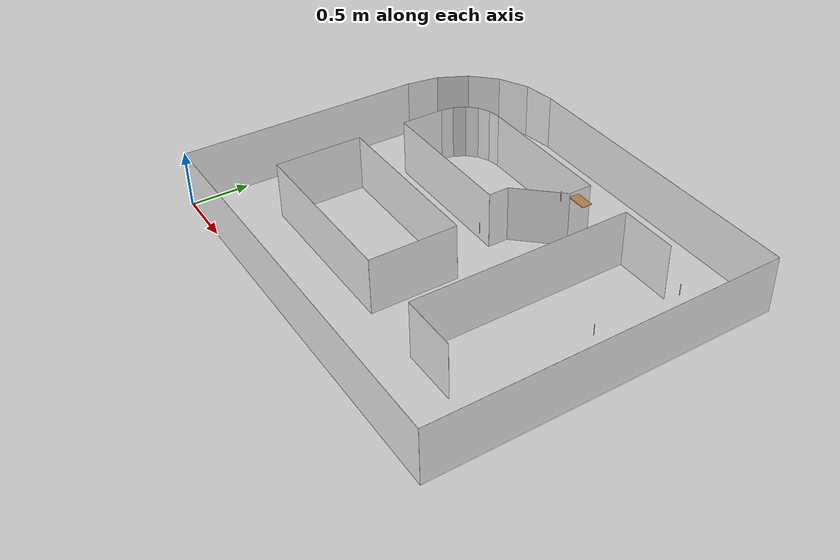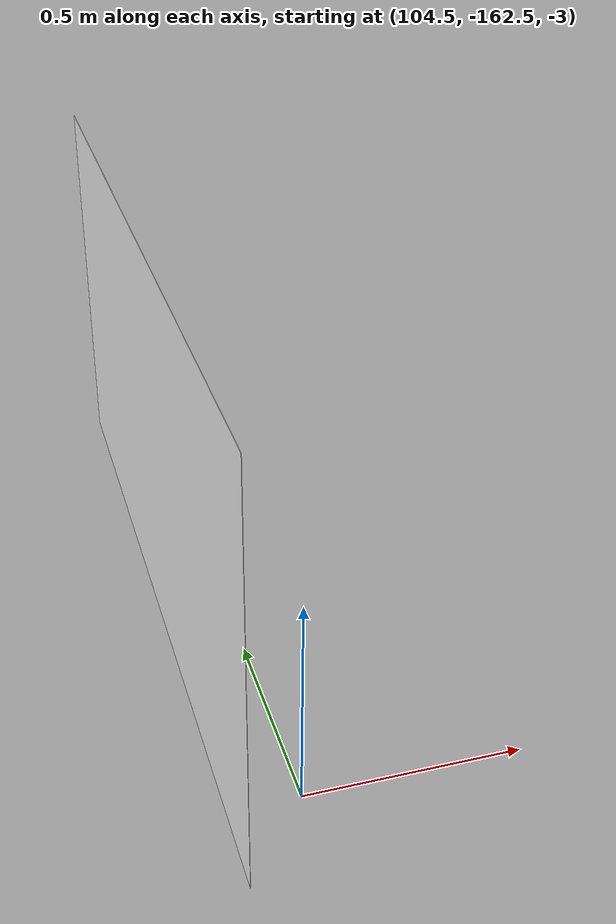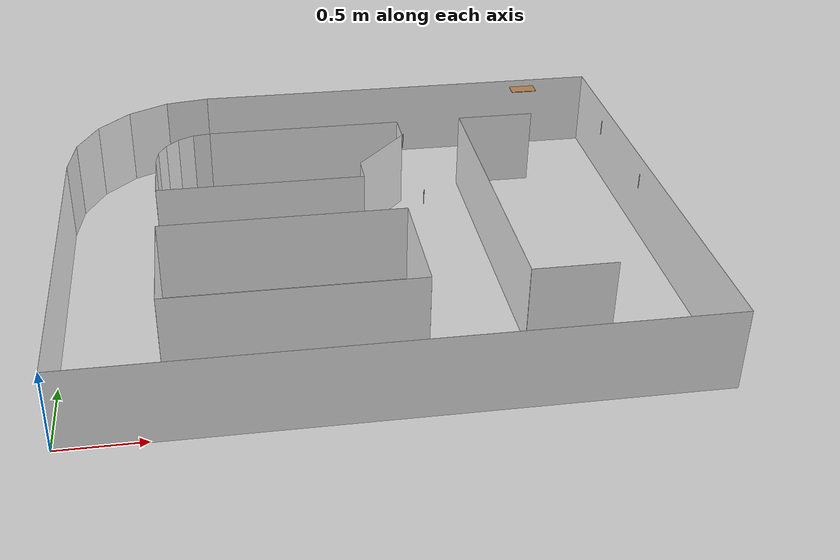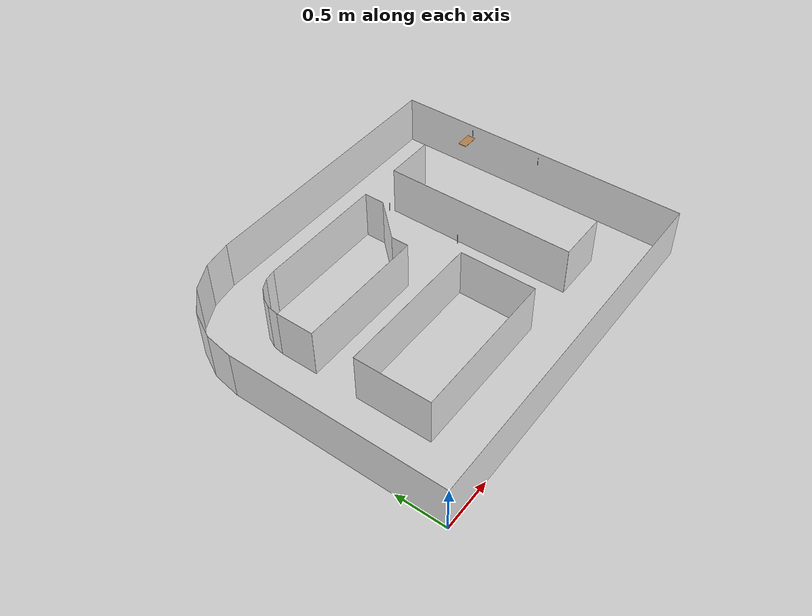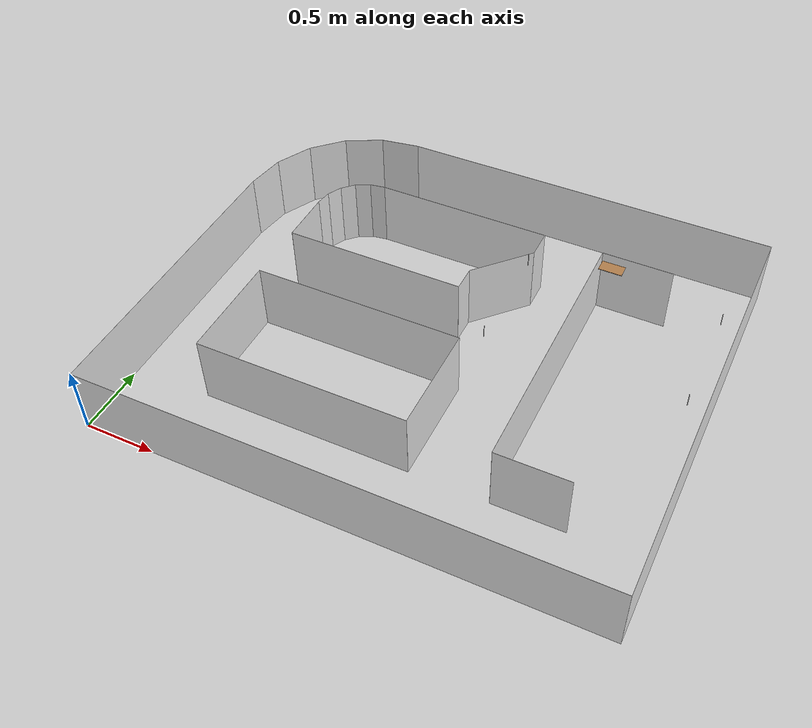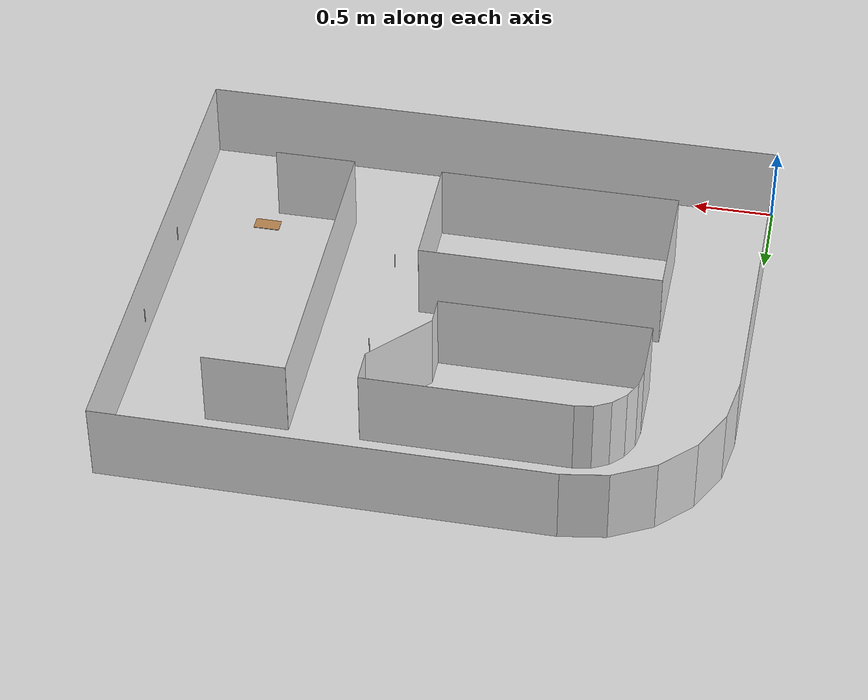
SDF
<sdf version="1.7">
 <world name="default">
  <light name="sun" type="directional">
   <pose>0 0 10 0 -0 0</pose>
   <diffuse>0.8 0.8 0.8 1</diffuse>
   <specular>0.1 0.1 0.1 1</specular>
   <attenuation>
    <range>1000</range>
    <constant>0.9</constant>
    <linear>0.01</linear>
    <quadratic>0.001</quadratic>
   </attenuation>
   <direction>-0.5 0.5 -1</direction>
   <spot><inner_angle>0</inner_angle><outer_angle>0</outer_angle><falloff>0</falloff></spot>
  </light>
  <model name="ground_plane">
   <static>1</static>
   <link name="link">
    <collision name="collision">
     <geometry><plane><normal>0 0 1</normal><size>100 100</size></plane></geometry>
     <surface><friction><ode><mu>100</mu><mu2>50</mu2></ode></friction></surface>
    </collision>
    <visual name="visual">
     <cast_shadows>0</cast_shadows>
     <geometry><plane><normal>0 0 1</normal><size>100 100</size></plane></geometry>
     <material>
      <script><uri>file://media/materials/scripts/gazebo.material</uri><name>Gazebo/Grey</name></script>
     </material>
    </visual>
   </link>
  </model>
  <model name="wall_0">
   <static>1</static>
   <link name="link">
    <collision name="collision"><geometry><box><size>2.1336 0.001 1</size></box></geometry></collision>
    <visual name="visual">
     <geometry><box><size>2.1336 0.001 1</size></box></geometry>
     <material>
      <script><name>Gazebo/White</name><uri>file://media/materials/scripts/gazebo.material</uri></script>
     </material>
    </visual>
   </link>
   <pose>0 1.0668 0 0 -0 1.5708</pose>
  </model>
  <model name="wall_1">
   <static>1</static>
   <link name="link">
    <collision name="collision"><geometry><box><size>0.286088 0.001 1</size></box></geometry></collision>
    <visual name="visual">
     <geometry><box><size>0.286088 0.001 1</size></box></geometry>
     <material>
      <script><name>Gazebo/White</name><uri>file://media/materials/scripts/gazebo.material</uri></script>
     </material>
    </visual>
   </link>
   <pose>0.022377 2.27489 0 0 -0 1.41372</pose>
  </model>
  <model name="wall_2">
   <static>1</static>
   <link name="link">
    <collision name="collision"><geometry><box><size>0.286088 0.001 1</size></box></geometry></collision>
    <visual name="visual">
     <geometry><box><size>0.286088 0.001 1</size></box></geometry>
     <material>
      <script><name>Gazebo/White</name><uri>file://media/materials/scripts/gazebo.material</uri></script>
     </material>
    </visual>
   </link>
   <pose>0.109695 2.54362 0 0 -0 1.09956</pose>
  </model>
  <model name="wall_3">
   <static>1</static>
   <link name="link">
    <collision name="collision"><geometry><box><size>0.286088 0.001 1</size></box></geometry></collision>
    <visual name="visual">
     <geometry><box><size>0.286088 0.001 1</size></box></geometry>
     <material>
      <script><name>Gazebo/White</name><uri>file://media/materials/scripts/gazebo.material</uri></script>
     </material>
    </visual>
   </link>
   <pose>0.275783 2.77222 0 0 -0 0.785398</pose>
  </model>
  <model name="wall_4">
   <static>1</static>
   <link name="link">
    <collision name="collision"><geometry><box><size>0.286088 0.001 1</size></box></geometry></collision>
    <visual name="visual">
     <geometry><box><size>0.286088 0.001 1</size></box></geometry>
     <material>
      <script><name>Gazebo/White</name><uri>file://media/materials/scripts/gazebo.material</uri></script>
     </material>
    </visual>
   </link>
   <pose>0.504383 2.93831 0 0 -0 0.471239</pose>
  </model>
  <model name="wall_5">
   <static>1</static>
   <link name="link">
    <collision name="collision"><geometry><box><size>0.286088 0.001 1</size></box></geometry></collision>
    <visual name="visual">
     <geometry><box><size>0.286088 0.001 1</size></box></geometry>
     <material>
      <script><name>Gazebo/White</name><uri>file://media/materials/scripts/gazebo.material</uri></script>
     </material>
    </visual>
   </link>
   <pose>0.773119 3.02563 0 0 -0 0.15708</pose>
  </model>
  <model name="wall_6">
   <static>1</static>
   <link name="link">
    <collision name="collision"><geometry><box><size>2.74321 0.001 1</size></box></geometry></collision>
    <visual name="visual">
     <geometry><box><size>2.74321 0.001 1</size></box></geometry>
     <material>
      <script><name>Gazebo/White</name><uri>file://media/materials/scripts/gazebo.material</uri></script>
     </material>
    </visual>
   </link>
   <pose>2.286 3.04801 0 0 -0 0</pose>
  </model>
  <model name="wall_7">
   <static>1</static>
   <link name="link">
    <collision name="collision"><geometry><box><size>3.04801 0.001 1</size></box></geometry></collision>
    <visual name="visual">
     <geometry><box><size>3.04801 0.001 1</size></box></geometry>
     <material>
      <script><name>Gazebo/White</name><uri>file://media/materials/scripts/gazebo.material</uri></script>
     </material>
    </visual>
   </link>
   <pose>3.65761 1.524 0 0 0 -1.5708</pose>
  </model>
  <model name="wall_8">
   <static>1</static>
   <link name="link">
    <collision name="collision"><geometry><box><size>3.65761 0.001 1</size></box></geometry></collision>
    <visual name="visual">
     <geometry><box><size>3.65761 0.001 1</size></box></geometry>
     <material>
      <script><name>Gazebo/White</name><uri>file://media/materials/scripts/gazebo.material</uri></script>
     </material>
    </visual>
   </link>
   <pose>1.8288 0 0 0 0 -3.14159</pose>
  </model>
  <model name="wall_9">
   <static>1</static>
   <link name="link">
    <collision name="collision"><geometry><box><size>0.762002 0.001 1</size></box></geometry></collision>
    <visual name="visual">
     <geometry><box><size>0.762002 0.001 1</size></box></geometry>
     <material>
      <script><name>Gazebo/White</name><uri>file://media/materials/scripts/gazebo.material</uri></script>
     </material>
    </visual>
   </link>
   <pose>0.558801 0.939802 0 0 -0 1.5708</pose>
  </model>
  <model name="wall_10">
   <static>1</static>
   <link name="link">
    <collision name="collision"><geometry><box><size>1.4986 0.001 1</size></box></geometry></collision>
    <visual name="visual">
     <geometry><box><size>1.4986 0.001 1</size></box></geometry>
     <material>
      <script><name>Gazebo/White</name><uri>file://media/materials/scripts/gazebo.material</uri></script>
     </material>
    </visual>
   </link>
   <pose>1.3081 1.3208 0 0 -0 0</pose>
  </model>
  <model name="wall_11">
   <static>1</static>
   <link name="link">
    <collision name="collision"><geometry><box><size>0.762002 0.001 1</size></box></geometry></collision>
    <visual name="visual">
     <geometry><box><size>0.762002 0.001 1</size></box></geometry>
     <material>
      <script><name>Gazebo/White</name><uri>file://media/materials/scripts/gazebo.material</uri></script>
     </material>
    </visual>
   </link>
   <pose>2.0574 0.939802 0 0 0 -1.5708</pose>
  </model>
  <model name="wall_12">
   <static>1</static>
   <link name="link">
    <collision name="collision"><geometry><box><size>1.4986 0.001 1</size></box></geometry></collision>
    <visual name="visual">
     <geometry><box><size>1.4986 0.001 1</size></box></geometry>
     <material>
      <script><name>Gazebo/White</name><uri>file://media/materials/scripts/gazebo.material</uri></script>
     </material>
    </visual>
   </link>
   <pose>1.3081 0.558801 0 0 0 -3.14159</pose>
  </model>
  <model name="wall_13">
   <static>1</static>
   <link name="link">
    <collision name="collision"><geometry><box><size>0.381001 0.001 1</size></box></geometry></collision>
    <visual name="visual">
     <geometry><box><size>0.381001 0.001 1</size></box></geometry>
     <material>
      <script><name>Gazebo/White</name><uri>file://media/materials/scripts/gazebo.material</uri></script>
     </material>
    </visual>
   </link>
   <pose>0.558801 1.9431 0 0 -0 1.5708</pose>
  </model>
  <model name="wall_14">
   <static>1</static>
   <link name="link">
    <collision name="collision"><geometry><box><size>0.111256 0.001 1</size></box></geometry></collision>
    <visual name="visual">
     <geometry><box><size>0.111256 0.001 1</size></box></geometry>
     <material>
      <script><name>Gazebo/White</name><uri>file://media/materials/scripts/gazebo.material</uri></script>
     </material>
    </visual>
   </link>
   <pose>0.567503 2.18855 0 0 -0 1.41372</pose>
  </model>
  <model name="wall_15">
   <static>1</static>
   <link name="link">
    <collision name="collision"><geometry><box><size>0.111256 0.001 1</size></box></geometry></collision>
    <visual name="visual">
     <geometry><box><size>0.111256 0.001 1</size></box></geometry>
     <material>
      <script><name>Gazebo/White</name><uri>file://media/materials/scripts/gazebo.material</uri></script>
     </material>
    </visual>
   </link>
   <pose>0.60146 2.29306 0 0 -0 1.09956</pose>
  </model>
  <model name="wall_16">
   <static>1</static>
   <link name="link">
    <collision name="collision"><geometry><box><size>0.111256 0.001 1</size></box></geometry></collision>
    <visual name="visual">
     <geometry><box><size>0.111256 0.001 1</size></box></geometry>
     <material>
      <script><name>Gazebo/White</name><uri>file://media/materials/scripts/gazebo.material</uri></script>
     </material>
    </visual>
   </link>
   <pose>0.66605 2.38196 0 0 -0 0.785398</pose>
  </model>
  <model name="wall_17">
   <static>1</static>
   <link name="link">
    <collision name="collision"><geometry><box><size>0.111256 0.001 1</size></box></geometry></collision>
    <visual name="visual">
     <geometry><box><size>0.111256 0.001 1</size></box></geometry>
     <material>
      <script><name>Gazebo/White</name><uri>file://media/materials/scripts/gazebo.material</uri></script>
     </material>
    </visual>
   </link>
   <pose>0.75495 2.44655 0 0 -0 0.471239</pose>
  </model>
  <model name="wall_18">
   <static>1</static>
   <link name="link">
    <collision name="collision"><geometry><box><size>0.111256 0.001 1</size></box></geometry></collision>
    <visual name="visual">
     <geometry><box><size>0.111256 0.001 1</size></box></geometry>
     <material>
      <script><name>Gazebo/White</name><uri>file://media/materials/scripts/gazebo.material</uri></script>
     </material>
    </visual>
   </link>
   <pose>0.859458 2.4805 0 0 -0 0.15708</pose>
  </model>
  <model name="wall_19">
   <static>1</static>
   <link name="link">
    <collision name="collision"><geometry><box><size>1.27 0.001 1</size></box></geometry></collision>
    <visual name="visual">
     <geometry><box><size>1.27 0.001 1</size></box></geometry>
     <material>
      <script><name>Gazebo/White</name><uri>file://media/materials/scripts/gazebo.material</uri></script>
     </material>
    </visual>
   </link>
   <pose>1.5494 2.48921 0 0 -0 0</pose>
  </model>
  <model name="wall_20">
   <static>1</static>
   <link name="link">
    <collision name="collision"><geometry><box><size>0.2032 0.001 1</size></box></geometry></collision>
    <visual name="visual">
     <geometry><box><size>0.2032 0.001 1</size></box></geometry>
     <material>
      <script><name>Gazebo/White</name><uri>file://media/materials/scripts/gazebo.material</uri></script>
     </material>
    </visual>
   </link>
   <pose>2.1844 2.38761 0 0 0 -1.5708</pose>
  </model>
  <model name="wall_21">
   <static>1</static>
   <link name="link">
    <collision name="collision"><geometry><box><size>0.485267 0.001 1</size></box></geometry></collision>
    <visual name="visual">
     <geometry><box><size>0.485267 0.001 1</size></box></geometry>
     <material>
      <script><name>Gazebo/White</name><uri>file://media/materials/scripts/gazebo.material</uri></script>
     </material>
    </visual>
   </link>
   <pose>2.0193 2.1082 0 0 0 -2.31917</pose>
  </model>
  <model name="wall_22">
   <static>1</static>
   <link name="link">
    <collision name="collision"><geometry><box><size>0.1778 0.001 1</size></box></geometry></collision>
    <visual name="visual">
     <geometry><box><size>0.1778 0.001 1</size></box></geometry>
     <material>
      <script><name>Gazebo/White</name><uri>file://media/materials/scripts/gazebo.material</uri></script>
     </material>
    </visual>
   </link>
   <pose>1.8542 1.8415 0 0 0 -1.5708</pose>
  </model>
  <model name="wall_23">
   <static>1</static>
   <link name="link">
    <collision name="collision"><geometry><box><size>1.2954 0.001 1</size></box></geometry></collision>
    <visual name="visual">
     <geometry><box><size>1.2954 0.001 1</size></box></geometry>
     <material>
      <script><name>Gazebo/White</name><uri>file://media/materials/scripts/gazebo.material</uri></script>
     </material>
    </visual>
   </link>
   <pose>1.2065 1.7526 0 0 0 -3.14159</pose>
  </model>
  <model name="wall_24">
   <static>1</static>
   <link name="link">
    <collision name="collision"><geometry><box><size>0.508001 0.001 1</size></box></geometry></collision>
    <visual name="visual">
     <geometry><box><size>0.508001 0.001 1</size></box></geometry>
     <material>
      <script><name>Gazebo/White</name><uri>file://media/materials/scripts/gazebo.material</uri></script>
     </material>
    </visual>
   </link>
   <pose>2.87021 2.48921 0 0 -0 0</pose>
  </model>
  <model name="wall_25">
   <static>1</static>
   <link name="link">
    <collision name="collision"><geometry><box><size>0.508001 0.001 1</size></box></geometry></collision>
    <visual name="visual">
     <geometry><box><size>0.508001 0.001 1</size></box></geometry>
     <material>
      <script><name>Gazebo/White</name><uri>file://media/materials/scripts/gazebo.material</uri></script>
     </material>
    </visual>
   </link>
   <pose>2.87021 0.558801 0 0 0 -3.14159</pose>
  </model>
  <model name="wall_26">
   <static>1</static>
   <link name="link">
    <collision name="collision"><geometry><box><size>1.9304 0.001 1</size></box></geometry></collision>
    <visual name="visual">
     <geometry><box><size>1.9304 0.001 1</size></box></geometry>
     <material>
      <script><name>Gazebo/White</name><uri>file://media/materials/scripts/gazebo.material</uri></script>
     </material>
    </visual>
   </link>
   <pose>104.339 -161.719 -2.5224 0 -0 1.5708</pose>
  </model>
  <gravity>0 0 -9.8</gravity>
  <magnetic_field>6e-06 2.3e-05 -4.2e-05</magnetic_field>
  <atmosphere type="adiabatic"/>
  <physics name="default_physics" default="0" type="ode">
   <max_step_size>0.001</max_step_size>
   <real_time_factor>1</real_time_factor>
   <real_time_update_rate>1000</real_time_update_rate>
  </physics>
  <scene><ambient>0.4 0.4 0.4 1</ambient><background>0.7 0.7 0.7 1</background><shadows>1</shadows></scene>
  <spherical_coordinates>
   <surface_model>EARTH_WGS84</surface_model>
   <latitude_deg>0</latitude_deg>
   <longitude_deg>0</longitude_deg>
   <elevation>0</elevation>
   <heading_deg>0</heading_deg>
  </spherical_coordinates>
  <model name="wall_26_clone">
   <static>1</static>
   <link name="link">
    <collision name="collision"><geometry><box><size>1.9304 0.001 1</size></box></geometry></collision>
    <visual name="visual">
     <geometry><box><size>1.9304 0.001 1</size></box></geometry>
     <material>
      <script><name>Gazebo/White</name><uri>file://media/materials/scripts/gazebo.material</uri></script>
     </material>
    </visual>
   </link>
   <pose>2.61537 1.52527 0.001996 0 -0 1.5708</pose>
  </model>
  <model name="table_modified">
   <link name="link">
    <inertial>
     <mass>1</mass>
     <inertia><ixx>1</ixx><ixy>0</ixy><ixz>0</ixz><iyy>1</iyy><iyz>0</iyz><izz>1</izz></inertia>
    </inertial>
    <visual name="visual1">
     <pose>0 0 1 0 -0 0</pose>
     <geometry><box><size>0.15 0.08 0.003</size></box></geometry>
     <material>
      <script><uri>file://media/materials/scripts/gazebo.material</uri><name>Gazebo/Wood</name></script>
      <shader type="pixel"><normal_map>__default__</normal_map></shader>
      <ambient>1 1 1 1</ambient>
      <diffuse>1 1 1 1</diffuse>
      <specular>0.2 0.2 0.2 1</specular>
      <emissive>0 0 0 1</emissive>
     </material>
    </visual>
    <visual name="front_left_leg">
     <pose>0.68 0.38 0.5 0 -0 0</pose>
     <geometry><cylinder><radius>0.002</radius><length>0.1</length></cylinder></geometry>
     <material>
      <script><uri>file://media/materials/scripts/gazebo.material</uri><name>Gazebo/Grey</name></script>
      <shader type="pixel"><normal_map>__default__</normal_map></shader>
      <ambient>0.3 0.3 0.3 1</ambient>
      <diffuse>0.7 0.7 0.7 1</diffuse>
      <specular>0.01 0.01 0.01 1</specular>
      <emissive>0 0 0 1</emissive>
     </material>
    </visual>
    <visual name="front_right_leg">
     <pose>0.68 -0.38 0.5 0 -0 0</pose>
     <geometry><cylinder><radius>0.002</radius><length>0.1</length></cylinder></geometry>
     <material>
      <script><uri>file://media/materials/scripts/gazebo.material</uri><name>Gazebo/Grey</name></script>
      <shader type="pixel"><normal_map>__default__</normal_map></shader>
      <ambient>0.3 0.3 0.3 1</ambient>
      <diffuse>0.7 0.7 0.7 1</diffuse>
      <specular>0.01 0.01 0.01 1</specular>
      <emissive>0 0 0 1</emissive>
     </material>
    </visual>
    <visual name="back_right_leg">
     <pose>-0.68 -0.38 0.5 0 -0 0</pose>
     <geometry><cylinder><radius>0.002</radius><length>0.1</length></cylinder></geometry>
     <material>
      <script><uri>file://media/materials/scripts/gazebo.material</uri><name>Gazebo/Grey</name></script>
      <shader type="pixel"><normal_map>__default__</normal_map></shader>
      <ambient>0.3 0.3 0.3 1</ambient>
      <diffuse>0.7 0.7 0.7 1</diffuse>
      <specular>0.01 0.01 0.01 1</specular>
      <emissive>0 0 0 1</emissive>
     </material>
    </visual>
    <visual name="back_left_leg">
     <pose>-0.68 0.38 0.5 0 -0 0</pose>
     <geometry><cylinder><radius>0.002</radius><length>0.1</length></cylinder></geometry>
     <material>
      <script><uri>file://media/materials/scripts/gazebo.material</uri><name>Gazebo/Grey</name></script>
      <shader type="pixel"><normal_map>__default__</normal_map></shader>
      <ambient>0.3 0.3 0.3 1</ambient>
      <diffuse>0.7 0.7 0.7 1</diffuse>
      <specular>0.01 0.01 0.01 1</specular>
      <emissive>0 0 0 1</emissive>
     </material>
    </visual>
    <collision name="surface">
     <pose>0 0 1 0 -0 0</pose>
     <geometry><box><size>0.15 0.08 0.003</size></box></geometry>
     <surface>
      <friction>
       <ode><mu>0.6</mu><mu2>0.6</mu2><fdir1>0 0 0</fdir1><slip1>0</slip1><slip2>0</slip2></ode>
       <torsional>
        <coefficient>1</coefficient>
        <patch_radius>0</patch_radius>
        <surface_radius>0</surface_radius>
        <use_patch_radius>1</use_patch_radius>
        <ode><slip>0</slip></ode>
       </torsional>
      </friction>
      <bounce><restitution_coefficient>0</restitution_coefficient><threshold>1e+06</threshold></bounce>
      <contact>
       <collide_without_contact>0</collide_without_contact>
       <collide_without_contact_bitmask>1</collide_without_contact_bitmask>
       <collide_bitmask>1</collide_bitmask>
       <ode>
        <soft_cfm>0</soft_cfm>
        <soft_erp>0.2</soft_erp>
        <kp>1e+13</kp>
        <kd>1</kd>
        <max_vel>0.01</max_vel>
        <min_depth>0</min_depth>
       </ode>
       <bullet>
        <split_impulse>1</split_impulse>
        <split_impulse_penetration_threshold>-0.01</split_impulse_penetration_threshold>
        <soft_cfm>0</soft_cfm>
        <soft_erp>0.2</soft_erp>
        <kp>1e+13</kp>
        <kd>1</kd>
       </bullet>
      </contact>
     </surface>
    </collision>
    <collision name="front_left_leg">
     <pose>0.68 0.38 0.5 0 -0 0</pose>
     <geometry><cylinder><radius>0.002</radius><length>0.1</length></cylinder></geometry>
     <surface>
      <friction>
       <ode><mu>1</mu><mu2>1</mu2><fdir1>0 0 0</fdir1><slip1>0</slip1><slip2>0</slip2></ode>
       <torsional>
        <coefficient>1</coefficient>
        <patch_radius>0</patch_radius>
        <surface_radius>0</surface_radius>
        <use_patch_radius>1</use_patch_radius>
        <ode><slip>0</slip></ode>
       </torsional>
      </friction>
      <bounce><restitution_coefficient>0</restitution_coefficient><threshold>1e+06</threshold></bounce>
      <contact>
       <collide_without_contact>0</collide_without_contact>
       <collide_without_contact_bitmask>1</collide_without_contact_bitmask>
       <collide_bitmask>1</collide_bitmask>
       <ode>
        <soft_cfm>0</soft_cfm>
        <soft_erp>0.2</soft_erp>
        <kp>1e+13</kp>
        <kd>1</kd>
        <max_vel>0.01</max_vel>
        <min_depth>0</min_depth>
       </ode>
       <bullet>
        <split_impulse>1</split_impulse>
        <split_impulse_penetration_threshold>-0.01</split_impulse_penetration_threshold>
        <soft_cfm>0</soft_cfm>
        <soft_erp>0.2</soft_erp>
        <kp>1e+13</kp>
        <kd>1</kd>
       </bullet>
      </contact>
     </surface>
    </collision>
    <collision name="front_right_leg">
     <pose>0.68 -0.38 0.5 0 -0 0</pose>
     <geometry><cylinder><radius>0.002</radius><length>0.1</length></cylinder></geometry>
     <surface>
      <friction>
       <ode><mu>1</mu><mu2>1</mu2><fdir1>0 0 0</fdir1><slip1>0</slip1><slip2>0</slip2></ode>
       <torsional>
        <coefficient>1</coefficient>
        <patch_radius>0</patch_radius>
        <surface_radius>0</surface_radius>
        <use_patch_radius>1</use_patch_radius>
        <ode><slip>0</slip></ode>
       </torsional>
      </friction>
      <bounce><restitution_coefficient>0</restitution_coefficient><threshold>1e+06</threshold></bounce>
      <contact>
       <collide_without_contact>0</collide_without_contact>
       <collide_without_contact_bitmask>1</collide_without_contact_bitmask>
       <collide_bitmask>1</collide_bitmask>
       <ode>
        <soft_cfm>0</soft_cfm>
        <soft_erp>0.2</soft_erp>
        <kp>1e+13</kp>
        <kd>1</kd>
        <max_vel>0.01</max_vel>
        <min_depth>0</min_depth>
       </ode>
       <bullet>
        <split_impulse>1</split_impulse>
        <split_impulse_penetration_threshold>-0.01</split_impulse_penetration_threshold>
        <soft_cfm>0</soft_cfm>
        <soft_erp>0.2</soft_erp>
        <kp>1e+13</kp>
        <kd>1</kd>
       </bullet>
      </contact>
     </surface>
    </collision>
    <collision name="back_right_leg">
     <pose>-0.68 -0.38 0.5 0 -0 0</pose>
     <geometry><cylinder><radius>0.002</radius><length>0.1</length></cylinder></geometry>
     <surface>
      <friction>
       <ode><mu>1</mu><mu2>1</mu2><fdir1>0 0 0</fdir1><slip1>0</slip1><slip2>0</slip2></ode>
       <torsional>
        <coefficient>1</coefficient>
        <patch_radius>0</patch_radius>
        <surface_radius>0</surface_radius>
        <use_patch_radius>1</use_patch_radius>
        <ode><slip>0</slip></ode>
       </torsional>
      </friction>
      <bounce><restitution_coefficient>0</restitution_coefficient><threshold>1e+06</threshold></bounce>
      <contact>
       <collide_without_contact>0</collide_without_contact>
       <collide_without_contact_bitmask>1</collide_without_contact_bitmask>
       <collide_bitmask>1</collide_bitmask>
       <ode>
        <soft_cfm>0</soft_cfm>
        <soft_erp>0.2</soft_erp>
        <kp>1e+13</kp>
        <kd>1</kd>
        <max_vel>0.01</max_vel>
        <min_depth>0</min_depth>
       </ode>
       <bullet>
        <split_impulse>1</split_impulse>
        <split_impulse_penetration_threshold>-0.01</split_impulse_penetration_threshold>
        <soft_cfm>0</soft_cfm>
        <soft_erp>0.2</soft_erp>
        <kp>1e+13</kp>
        <kd>1</kd>
       </bullet>
      </contact>
     </surface>
    </collision>
    <collision name="back_left_leg">
     <pose>-0.68 0.38 0.5 0 -0 0</pose>
     <geometry><cylinder><radius>0.002</radius><length>0.1</length></cylinder></geometry>
     <surface>
      <friction>
       <ode><mu>1</mu><mu2>1</mu2><fdir1>0 0 0</fdir1><slip1>0</slip1><slip2>0</slip2></ode>
       <torsional>
        <coefficient>1</coefficient>
        <patch_radius>0</patch_radius>
        <surface_radius>0</surface_radius>
        <use_patch_radius>1</use_patch_radius>
        <ode><slip>0</slip></ode>
       </torsional>
      </friction>
      <bounce><restitution_coefficient>0</restitution_coefficient><threshold>1e+06</threshold></bounce>
      <contact>
       <collide_without_contact>0</collide_without_contact>
       <collide_without_contact_bitmask>1</collide_without_contact_bitmask>
       <collide_bitmask>1</collide_bitmask>
       <ode>
        <soft_cfm>0</soft_cfm>
        <soft_erp>0.2</soft_erp>
        <kp>1e+13</kp>
        <kd>1</kd>
        <max_vel>0.01</max_vel>
        <min_depth>0</min_depth>
       </ode>
       <bullet>
        <split_impulse>1</split_impulse>
        <split_impulse_penetration_threshold>-0.01</split_impulse_penetration_threshold>
        <soft_cfm>0</soft_cfm>
        <soft_erp>0.2</soft_erp>
        <kp>1e+13</kp>
        <kd>1</kd>
       </bullet>
      </contact>
     </surface>
    </collision>
   </link>
   <static>1</static>
   <pose>2.85622 1.82214 0 0 -0 0</pose>
  </model>
 </world>
</sdf>
